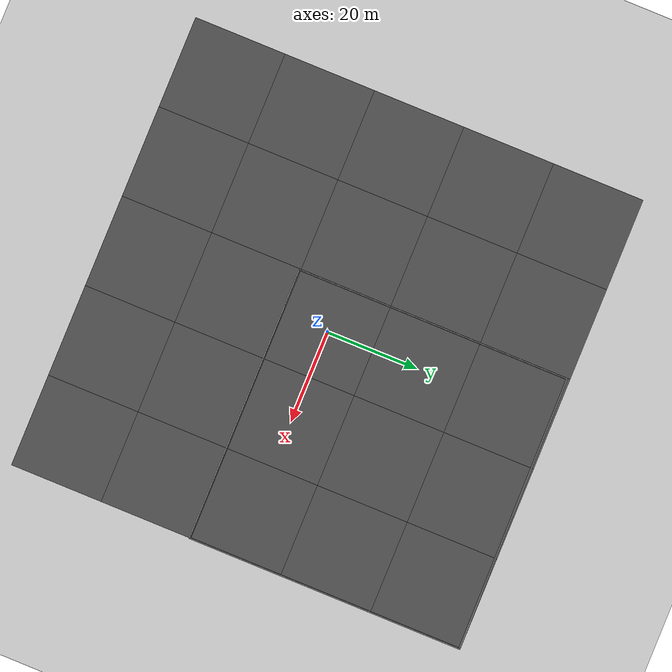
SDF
<sdf version="1.4">
 <world name="default">
  <light name="sun" type="directional">
   <pose>0 0 10 0 -0 0</pose>
   <diffuse>0.8 0.8 0.8 1</diffuse>
   <specular>0.2 0.2 0.2 1</specular>
   <attenuation>
    <range>1000</range>
    <constant>0.9</constant>
    <linear>0.01</linear>
    <quadratic>0.001</quadratic>
   </attenuation>
   <direction>-0.5 0.1 -0.9</direction>
  </light>
  <model name="ground_plane">
   <static>1</static>
   <link name="link">
    <collision name="collision">
     <geometry><plane><normal>0 0 1</normal><size>100 100</size></plane></geometry>
     <surface><friction><ode><mu>100</mu><mu2>50</mu2></ode></friction></surface>
    </collision>
    <visual name="visual">
     <cast_shadows>0</cast_shadows>
     <geometry><plane><normal>0 0 1</normal><size>100 100</size></plane></geometry>
     <material>
      <script><uri>file://media/materials/scripts/gazebo.material</uri><name>Gazebo/Grey</name></script>
     </material>
    </visual>
    <velocity_decay><linear>0</linear><angular>0</angular></velocity_decay>
   </link>
  </model>
  <physics type="ode">
   <max_step_size>0.001</max_step_size>
   <real_time_factor>1</real_time_factor>
   <real_time_update_rate>1000</real_time_update_rate>
   <gravity>0 0 -9.8</gravity>
  </physics>
  <scene><ambient>0.4 0.4 0.4 1</ambient><background>0.7 0.7 0.7 1</background><shadows>1</shadows></scene>
  <spherical_coordinates>
   <surface_model>EARTH_WGS84</surface_model>
   <latitude_deg>0</latitude_deg>
   <longitude_deg>0</longitude_deg>
   <elevation>0</elevation>
   <heading_deg>0</heading_deg>
  </spherical_coordinates>
  <model name="asphalt_plane">
   <static>1</static>
   <link name="link">
    <collision name="collision"><geometry><box><size>20 20 0.1</size></box></geometry></collision>
    <visual name="visual">
     <cast_shadows>0</cast_shadows>
     <geometry><box><size>20 20 0.1</size></box></geometry>
     <material>
      <script>
       <uri>model://asphalt_plane/materials/scripts</uri>
       <uri>model://asphalt_plane/materials/textures</uri>
       <name>vrc/asphalt</name>
      </script>
     </material>
    </visual>
    <velocity_decay><linear>0</linear><angular>0</angular></velocity_decay>
   </link>
  </model>
  <model name="asphalt_plane_0">
   <static>1</static>
   <link name="link">
    <collision name="collision"><geometry><box><size>20 20 0.1</size></box></geometry></collision>
    <visual name="visual">
     <cast_shadows>0</cast_shadows>
     <geometry><box><size>20 20 0.1</size></box></geometry>
     <material>
      <script>
       <uri>model://asphalt_plane/materials/scripts</uri>
       <uri>model://asphalt_plane/materials/textures</uri>
       <name>vrc/asphalt</name>
      </script>
     </material>
    </visual>
    <velocity_decay><linear>0</linear><angular>0</angular></velocity_decay>
   </link>
   <pose>20 0 0 0 -0 0</pose>
  </model>
  <model name="asphalt_plane_1">
   <static>1</static>
   <link name="link">
    <collision name="collision"><geometry><box><size>20 20 0.1</size></box></geometry></collision>
    <visual name="visual">
     <cast_shadows>0</cast_shadows>
     <geometry><box><size>20 20 0.1</size></box></geometry>
     <material>
      <script>
       <uri>model://asphalt_plane/materials/scripts</uri>
       <uri>model://asphalt_plane/materials/textures</uri>
       <name>vrc/asphalt</name>
      </script>
     </material>
    </visual>
    <velocity_decay><linear>0</linear><angular>0</angular></velocity_decay>
   </link>
   <pose>0 -20 0 0 -0 0</pose>
  </model>
  <model name="asphalt_plane_2">
   <static>1</static>
   <link name="link">
    <collision name="collision"><geometry><box><size>20 20 0.1</size></box></geometry></collision>
    <visual name="visual">
     <cast_shadows>0</cast_shadows>
     <geometry><box><size>20 20 0.1</size></box></geometry>
     <material>
      <script>
       <uri>model://asphalt_plane/materials/scripts</uri>
       <uri>model://asphalt_plane/materials/textures</uri>
       <name>vrc/asphalt</name>
      </script>
     </material>
    </visual>
    <velocity_decay><linear>0</linear><angular>0</angular></velocity_decay>
   </link>
   <pose>20 -20 0 0 -0 0</pose>
  </model>
  <light name="sun" type="directional">
   <pose>-4.56059 5 10 0 -0 0</pose>
   <diffuse>0.8 0.8 0.8 1</diffuse>
   <specular>0.2 0.2 0.2 1</specular>
   <attenuation>
    <range>1000</range>
    <constant>0.9</constant>
    <linear>0.01</linear>
    <quadratic>0.001</quadratic>
   </attenuation>
   <direction>-0.5 0.1 -0.9</direction>
  </light>
  <model name="asphalt_plane_4">
   <static>1</static>
   <link name="link">
    <collision name="collision"><geometry><box><size>20 20 0.1</size></box></geometry></collision>
    <visual name="visual">
     <cast_shadows>0</cast_shadows>
     <geometry><box><size>20 20 0.1</size></box></geometry>
     <material>
      <script>
       <uri>model://asphalt_plane/materials/scripts</uri>
       <uri>model://asphalt_plane/materials/textures</uri>
       <name>vrc/asphalt</name>
      </script>
     </material>
    </visual>
    <velocity_decay><linear>0</linear><angular>0</angular></velocity_decay>
   </link>
   <pose>0 -40 0 0 -0 0</pose>
  </model>
  <model name="asphalt_plane_5">
   <static>1</static>
   <link name="link">
    <collision name="collision"><geometry><box><size>20 20 0.1</size></box></geometry></collision>
    <visual name="visual">
     <cast_shadows>0</cast_shadows>
     <geometry><box><size>20 20 0.1</size></box></geometry>
     <material>
      <script>
       <uri>model://asphalt_plane/materials/scripts</uri>
       <uri>model://asphalt_plane/materials/textures</uri>
       <name>vrc/asphalt</name>
      </script>
     </material>
    </visual>
    <velocity_decay><linear>0</linear><angular>0</angular></velocity_decay>
   </link>
   <pose>20 -40 0 0 -0 0</pose>
  </model>
  <model name="asphalt_plane_6">
   <static>1</static>
   <link name="link">
    <collision name="collision"><geometry><box><size>20 20 0.1</size></box></geometry></collision>
    <visual name="visual">
     <cast_shadows>0</cast_shadows>
     <geometry><box><size>20 20 0.1</size></box></geometry>
     <material>
      <script>
       <uri>model://asphalt_plane/materials/scripts</uri>
       <uri>model://asphalt_plane/materials/textures</uri>
       <name>vrc/asphalt</name>
      </script>
     </material>
    </visual>
    <velocity_decay><linear>0</linear><angular>0</angular></velocity_decay>
   </link>
   <pose>40 -40 0 0 -0 0</pose>
  </model>
  <model name="asphalt_plane_8">
   <static>1</static>
   <link name="link">
    <collision name="collision"><geometry><box><size>20 20 0.1</size></box></geometry></collision>
    <visual name="visual">
     <cast_shadows>0</cast_shadows>
     <geometry><box><size>20 20 0.1</size></box></geometry>
     <material>
      <script>
       <uri>model://asphalt_plane/materials/scripts</uri>
       <uri>model://asphalt_plane/materials/textures</uri>
       <name>vrc/asphalt</name>
      </script>
     </material>
    </visual>
    <velocity_decay><linear>0</linear><angular>0</angular></velocity_decay>
   </link>
   <pose>40 0 0 0 -0 0</pose>
  </model>
  <model name="asphalt_plane_9">
   <static>1</static>
   <link name="link">
    <collision name="collision"><geometry><box><size>20 20 0.1</size></box></geometry></collision>
    <visual name="visual">
     <cast_shadows>0</cast_shadows>
     <geometry><box><size>20 20 0.1</size></box></geometry>
     <material>
      <script>
       <uri>model://asphalt_plane/materials/scripts</uri>
       <uri>model://asphalt_plane/materials/textures</uri>
       <name>vrc/asphalt</name>
      </script>
     </material>
    </visual>
    <velocity_decay><linear>0</linear><angular>0</angular></velocity_decay>
   </link>
   <pose>40 -20 0 0 -0 0</pose>
  </model>
  <model name="asphalt_plane_10">
   <static>1</static>
   <link name="link">
    <collision name="collision"><geometry><box><size>20 20 0.1</size></box></geometry></collision>
    <visual name="visual">
     <cast_shadows>0</cast_shadows>
     <geometry><box><size>20 20 0.1</size></box></geometry>
     <material>
      <script>
       <uri>model://asphalt_plane/materials/scripts</uri>
       <uri>model://asphalt_plane/materials/textures</uri>
       <name>vrc/asphalt</name>
      </script>
     </material>
    </visual>
    <velocity_decay><linear>0</linear><angular>0</angular></velocity_decay>
   </link>
   <pose>40 20 0 0 -0 0</pose>
  </model>
  <model name="asphalt_plane_11">
   <static>1</static>
   <link name="link">
    <collision name="collision"><geometry><box><size>20 20 0.1</size></box></geometry></collision>
    <visual name="visual">
     <cast_shadows>0</cast_shadows>
     <geometry><box><size>20 20 0.1</size></box></geometry>
     <material>
      <script>
       <uri>model://asphalt_plane/materials/scripts</uri>
       <uri>model://asphalt_plane/materials/textures</uri>
       <name>vrc/asphalt</name>
      </script>
     </material>
    </visual>
    <velocity_decay><linear>0</linear><angular>0</angular></velocity_decay>
   </link>
   <pose>40 40 0 0 -0 0</pose>
  </model>
  <model name="asphalt_plane_12">
   <static>1</static>
   <link name="link">
    <collision name="collision"><geometry><box><size>20 20 0.1</size></box></geometry></collision>
    <visual name="visual">
     <cast_shadows>0</cast_shadows>
     <geometry><box><size>20 20 0.1</size></box></geometry>
     <material>
      <script>
       <uri>model://asphalt_plane/materials/scripts</uri>
       <uri>model://asphalt_plane/materials/textures</uri>
       <name>vrc/asphalt</name>
      </script>
     </material>
    </visual>
    <velocity_decay><linear>0</linear><angular>0</angular></velocity_decay>
   </link>
   <pose>20 20 0 0 -0 0</pose>
  </model>
  <model name="asphalt_plane_13">
   <static>1</static>
   <link name="link">
    <collision name="collision"><geometry><box><size>20 20 0.1</size></box></geometry></collision>
    <visual name="visual">
     <cast_shadows>0</cast_shadows>
     <geometry><box><size>20 20 0.1</size></box></geometry>
     <material>
      <script>
       <uri>model://asphalt_plane/materials/scripts</uri>
       <uri>model://asphalt_plane/materials/textures</uri>
       <name>vrc/asphalt</name>
      </script>
     </material>
    </visual>
    <velocity_decay><linear>0</linear><angular>0</angular></velocity_decay>
   </link>
   <pose>20 40 0 0 -0 0</pose>
  </model>
  <model name="asphalt_plane_14">
   <static>1</static>
   <link name="link">
    <collision name="collision"><geometry><box><size>20 20 0.1</size></box></geometry></collision>
    <visual name="visual">
     <cast_shadows>0</cast_shadows>
     <geometry><box><size>20 20 0.1</size></box></geometry>
     <material>
      <script>
       <uri>model://asphalt_plane/materials/scripts</uri>
       <uri>model://asphalt_plane/materials/textures</uri>
       <name>vrc/asphalt</name>
      </script>
     </material>
    </visual>
    <velocity_decay><linear>0</linear><angular>0</angular></velocity_decay>
   </link>
   <pose>0 20 0 0 -0 0</pose>
  </model>
  <model name="asphalt_plane_15">
   <static>1</static>
   <link name="link">
    <collision name="collision"><geometry><box><size>20 20 0.1</size></box></geometry></collision>
    <visual name="visual">
     <cast_shadows>0</cast_shadows>
     <geometry><box><size>20 20 0.1</size></box></geometry>
     <material>
      <script>
       <uri>model://asphalt_plane/materials/scripts</uri>
       <uri>model://asphalt_plane/materials/textures</uri>
       <name>vrc/asphalt</name>
      </script>
     </material>
    </visual>
    <velocity_decay><linear>0</linear><angular>0</angular></velocity_decay>
   </link>
   <pose>0 40 0 0 -0 0</pose>
  </model>
  <model name="asphalt_plane_16">
   <static>1</static>
   <link name="link">
    <collision name="collision"><geometry><box><size>20 20 0.1</size></box></geometry></collision>
    <visual name="visual">
     <cast_shadows>0</cast_shadows>
     <geometry><box><size>20 20 0.1</size></box></geometry>
     <material>
      <script>
       <uri>model://asphalt_plane/materials/scripts</uri>
       <uri>model://asphalt_plane/materials/textures</uri>
       <name>vrc/asphalt</name>
      </script>
     </material>
    </visual>
    <velocity_decay><linear>0</linear><angular>0</angular></velocity_decay>
   </link>
   <pose>-20 -40 0 0 -0 0</pose>
  </model>
  <model name="asphalt_plane_17">
   <static>1</static>
   <link name="link">
    <collision name="collision"><geometry><box><size>20 20 0.1</size></box></geometry></collision>
    <visual name="visual">
     <cast_shadows>0</cast_shadows>
     <geometry><box><size>20 20 0.1</size></box></geometry>
     <material>
      <script>
       <uri>model://asphalt_plane/materials/scripts</uri>
       <uri>model://asphalt_plane/materials/textures</uri>
       <name>vrc/asphalt</name>
      </script>
     </material>
    </visual>
    <velocity_decay><linear>0</linear><angular>0</angular></velocity_decay>
   </link>
   <pose>-20 -20 0 0 -0 0</pose>
  </model>
  <model name="asphalt_plane_18">
   <static>1</static>
   <link name="link">
    <collision name="collision"><geometry><box><size>20 20 0.1</size></box></geometry></collision>
    <visual name="visual">
     <cast_shadows>0</cast_shadows>
     <geometry><box><size>20 20 0.1</size></box></geometry>
     <material>
      <script>
       <uri>model://asphalt_plane/materials/scripts</uri>
       <uri>model://asphalt_plane/materials/textures</uri>
       <name>vrc/asphalt</name>
      </script>
     </material>
    </visual>
    <velocity_decay><linear>0</linear><angular>0</angular></velocity_decay>
   </link>
   <pose>-20 0 0 0 -0 0</pose>
  </model>
  <model name="asphalt_plane_19">
   <static>1</static>
   <link name="link">
    <collision name="collision"><geometry><box><size>20 20 0.1</size></box></geometry></collision>
    <visual name="visual">
     <cast_shadows>0</cast_shadows>
     <geometry><box><size>20 20 0.1</size></box></geometry>
     <material>
      <script>
       <uri>model://asphalt_plane/materials/scripts</uri>
       <uri>model://asphalt_plane/materials/textures</uri>
       <name>vrc/asphalt</name>
      </script>
     </material>
    </visual>
    <velocity_decay><linear>0</linear><angular>0</angular></velocity_decay>
   </link>
   <pose>-20 20 0 0 -0 0</pose>
  </model>
  <model name="asphalt_plane_20">
   <static>1</static>
   <link name="link">
    <collision name="collision"><geometry><box><size>20 20 0.1</size></box></geometry></collision>
    <visual name="visual">
     <cast_shadows>0</cast_shadows>
     <geometry><box><size>20 20 0.1</size></box></geometry>
     <material>
      <script>
       <uri>model://asphalt_plane/materials/scripts</uri>
       <uri>model://asphalt_plane/materials/textures</uri>
       <name>vrc/asphalt</name>
      </script>
     </material>
    </visual>
    <velocity_decay><linear>0</linear><angular>0</angular></velocity_decay>
   </link>
   <pose>-20 40 0 0 -0 0</pose>
  </model>
  <model name="asphalt_plane_21">
   <static>1</static>
   <link name="link">
    <collision name="collision"><geometry><box><size>20 20 0.1</size></box></geometry></collision>
    <visual name="visual">
     <cast_shadows>0</cast_shadows>
     <geometry><box><size>20 20 0.1</size></box></geometry>
     <material>
      <script>
       <uri>model://asphalt_plane/materials/scripts</uri>
       <uri>model://asphalt_plane/materials/textures</uri>
       <name>vrc/asphalt</name>
      </script>
     </material>
    </visual>
    <velocity_decay><linear>0</linear><angular>0</angular></velocity_decay>
   </link>
   <pose>-40 -40 0 0 -0 0</pose>
  </model>
  <model name="asphalt_plane_22">
   <static>1</static>
   <link name="link">
    <collision name="collision"><geometry><box><size>20 20 0.1</size></box></geometry></collision>
    <visual name="visual">
     <cast_shadows>0</cast_shadows>
     <geometry><box><size>20 20 0.1</size></box></geometry>
     <material>
      <script>
       <uri>model://asphalt_plane/materials/scripts</uri>
       <uri>model://asphalt_plane/materials/textures</uri>
       <name>vrc/asphalt</name>
      </script>
     </material>
    </visual>
    <velocity_decay><linear>0</linear><angular>0</angular></velocity_decay>
   </link>
   <pose>-40 -20 0 0 -0 0</pose>
  </model>
  <model name="asphalt_plane_23">
   <static>1</static>
   <link name="link">
    <collision name="collision"><geometry><box><size>20 20 0.1</size></box></geometry></collision>
    <visual name="visual">
     <cast_shadows>0</cast_shadows>
     <geometry><box><size>20 20 0.1</size></box></geometry>
     <material>
      <script>
       <uri>model://asphalt_plane/materials/scripts</uri>
       <uri>model://asphalt_plane/materials/textures</uri>
       <name>vrc/asphalt</name>
      </script>
     </material>
    </visual>
    <velocity_decay><linear>0</linear><angular>0</angular></velocity_decay>
   </link>
   <pose>-40 0 0 0 -0 0</pose>
  </model>
  <model name="asphalt_plane_24">
   <static>1</static>
   <link name="link">
    <collision name="collision"><geometry><box><size>20 20 0.1</size></box></geometry></collision>
    <visual name="visual">
     <cast_shadows>0</cast_shadows>
     <geometry><box><size>20 20 0.1</size></box></geometry>
     <material>
      <script>
       <uri>model://asphalt_plane/materials/scripts</uri>
       <uri>model://asphalt_plane/materials/textures</uri>
       <name>vrc/asphalt</name>
      </script>
     </material>
    </visual>
    <velocity_decay><linear>0</linear><angular>0</angular></velocity_decay>
   </link>
   <pose>-40 20 0 0 -0 0</pose>
  </model>
  <model name="asphalt_plane_25">
   <static>1</static>
   <link name="link">
    <collision name="collision"><geometry><box><size>20 20 0.1</size></box></geometry></collision>
    <visual name="visual">
     <cast_shadows>0</cast_shadows>
     <geometry><box><size>20 20 0.1</size></box></geometry>
     <material>
      <script>
       <uri>model://asphalt_plane/materials/scripts</uri>
       <uri>model://asphalt_plane/materials/textures</uri>
       <name>vrc/asphalt</name>
      </script>
     </material>
    </visual>
    <velocity_decay><linear>0</linear><angular>0</angular></velocity_decay>
   </link>
   <pose>-40 40 0 0 -0 0</pose>
  </model>
  <model name="Wall">
   <link name="Wall_0">
    <collision name="Wall_0_Collision">
     <geometry><box><size>51.8142 0.2 2.5</size></box></geometry>
     <pose>0 0 1.25 0 -0 0</pose>
    </collision>
    <visual name="Wall_0_Visual">
     <pose>0 0 1.25 0 -0 0</pose>
     <geometry><box><size>51.8142 0.2 2.5</size></box></geometry>
     <material>
      <script><uri>file://media/materials/scripts/gazebo.material</uri><name>Gazebo/Grey</name></script>
     </material>
    </visual>
    <velocity_decay><linear>0</linear><angular>0</angular></velocity_decay>
    <pose>24.1271 -10.2371 0 0 -0 0</pose>
   </link>
   <link name="Wall_1">
    <collision name="Wall_1_Collision">
     <geometry><box><size>60.1074 0.2 2.5</size></box></geometry>
     <pose>0 0 1.25 0 -0 0</pose>
    </collision>
    <visual name="Wall_1_Visual">
     <pose>0 0 1.25 0 -0 0</pose>
     <geometry><box><size>60.1074 0.2 2.5</size></box></geometry>
     <material>
      <script><uri>file://media/materials/scripts/gazebo.material</uri><name>Gazebo/Grey</name></script>
     </material>
    </visual>
    <velocity_decay><linear>0</linear><angular>0</angular></velocity_decay>
    <pose>49.9342 19.7166 0 0 -0 1.5708</pose>
   </link>
   <link name="Wall_2">
    <collision name="Wall_2_Collision">
     <geometry><box><size>59.882 0.2 2.5</size></box></geometry>
     <pose>0 0 1.25 0 -0 0</pose>
    </collision>
    <visual name="Wall_2_Visual">
     <pose>0 0 1.25 0 -0 0</pose>
     <geometry><box><size>59.882 0.2 2.5</size></box></geometry>
     <material>
      <script><uri>file://media/materials/scripts/gazebo.material</uri><name>Gazebo/Grey</name></script>
     </material>
    </visual>
    <velocity_decay><linear>0</linear><angular>0</angular></velocity_decay>
    <pose>20.094 49.4526 0 0 0 -3.1343</pose>
   </link>
   <link name="Wall_3">
    <collision name="Wall_3_Collision">
     <geometry><box><size>51.3451 0.2 2.5</size></box></geometry>
     <pose>0 0 1.25 0 -0 0</pose>
    </collision>
    <visual name="Wall_3_Visual">
     <pose>0 0 1.25 0 -0 0</pose>
     <geometry><box><size>51.3451 0.2 2.5</size></box></geometry>
     <material>
      <script><uri>file://media/materials/scripts/gazebo.material</uri><name>Gazebo/Grey</name></script>
     </material>
    </visual>
    <velocity_decay><linear>0</linear><angular>0</angular></velocity_decay>
    <pose>-9.74624 23.6624 0 0 0 -1.5708</pose>
   </link>
   <link name="Wall_6">
    <collision name="Wall_6_Collision">
     <geometry><box><size>8.33706 0.2 2.5</size></box></geometry>
     <pose>0 0 1.25 0 -0 0</pose>
    </collision>
    <visual name="Wall_6_Visual">
     <pose>0 0 1.25 0 -0 0</pose>
     <geometry><box><size>8.33706 0.2 2.5</size></box></geometry>
     <material>
      <script><uri>file://media/materials/scripts/gazebo.material</uri><name>Gazebo/Grey</name></script>
     </material>
    </visual>
    <velocity_decay><linear>0</linear><angular>0</angular></velocity_decay>
    <pose>-9.73568 -6.21635 0 0 0 -1.5708</pose>
   </link>
   <link name="Wall_7">
    <collision name="Wall_7_Collision">
     <geometry><box><size>8.09295 0.2 2.5</size></box></geometry>
     <pose>0 0 1.25 0 -0 0</pose>
    </collision>
    <visual name="Wall_7_Visual">
     <pose>0 0 1.25 0 -0 0</pose>
     <geometry><box><size>8.09295 0.2 2.5</size></box></geometry>
     <material>
      <script><uri>file://media/materials/scripts/gazebo.material</uri><name>Gazebo/Grey</name></script>
     </material>
    </visual>
    <velocity_decay><linear>0</linear><angular>0</angular></velocity_decay>
    <pose>-5.78921 -10.2849 0 0 -0 0</pose>
   </link>
   <static>1</static>
  </model>
 </world>
</sdf>
